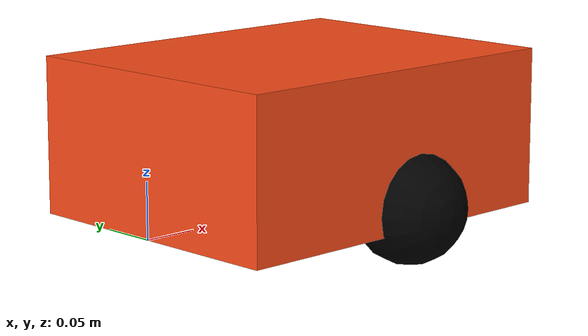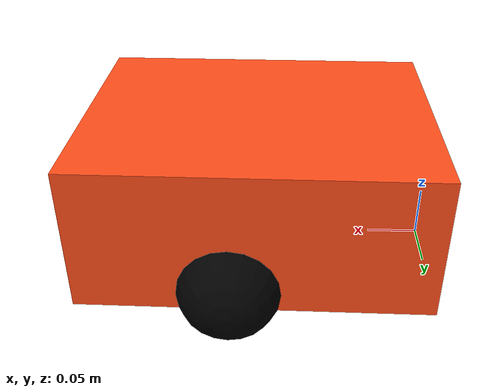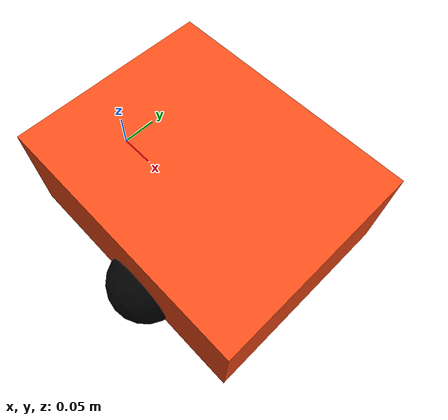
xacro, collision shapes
<?xml version="1.0"?>
<robot xmlns:xacro="http://www.ros.org/wiki/xacro" >

    <xacro:include filename="inertial_macros.xacro"/>

    <xacro:property name="chassis_length" value="0.335"/>
    <xacro:property name="chassis_width" value="0.265"/>
    <xacro:property name="chassis_height" value="0.14"/>
    <xacro:property name="chassis_mass" value="1.0"/>
    <xacro:property name="wheel_radius" value="0.05"/>
    <xacro:property name="wheel_thickness" value="0.026"/>
    <xacro:property name="wheel_mass" value="0.05"/>
    <xacro:property name="wheel_offset_x" value="0.19"/>
    <!--xacro:property name="wheel_offset_x" value="0.162"/-->
    <xacro:property name="wheel_offset_y" value="0.12"/>
    <xacro:property name="wheel_offset_z" value="0.0176"/>

    <material name="white">
        <color rgba="1 1 1 1" />
    </material>

    <material name="orange">
        <color rgba="1 0.3 0.1 1"/>
    </material>

    <material name="blue">
        <color rgba="0.2 0.2 1 1"/>
    </material>

    <material name="black">
        <color rgba="0 0 0 1"/>
    </material>

    <material name="red">
        <color rgba="1 0 0 1"/>
    </material>

    <!-- BASE LINK -->

    <link name="base_link">

    </link>

    <!-- BASE_FOOTPRINT LINK -->

    <joint name="base_footprint_joint" type="fixed">
        <parent link="base_link"/>
        <child link="base_footprint"/>
        <origin xyz="0 0 ${chassis_height/2}" rpy="0 0 0"/>
    </joint>

    <link name="base_footprint">
    </link>

    <!-- CHASSIS LINK -->

    <joint name="chassis_joint" type="fixed">
        <parent link="base_link"/>
        <child link="chassis"/>
        <origin xyz="0 0 0"/>
    </joint>

    <link name="chassis">
        <visual>
            <origin xyz="${chassis_length/2} 0 ${chassis_height/2}"/>
            <geometry>
                <mesh filename="package://turms_description/mesh/bases/chassis.stl" scale ="2 2 2"/>
                <!--box size="${chassis_length} ${chassis_width} ${chassis_height}"/-->
            </geometry>
            <material name="orange"/>
        </visual>
        <collision>
            <origin xyz="${chassis_length/2} 0 ${chassis_height/2}"/>
            <geometry>
                <box size="${chassis_length} ${chassis_width} ${chassis_height}"/>
            </geometry>
        </collision>
        <xacro:inertial_box mass="0.5" x="${chassis_length}" y="${chassis_width}" z="${chassis_height}">
            <origin xyz="${chassis_length/2} 0 ${chassis_height/2}" rpy="0 0 0"/>
        </xacro:inertial_box>
    </link>

    <gazebo reference="chassis">
        <material>Gazebo/Orange</material>
    </gazebo>

    <!-- LEFT WHEEL LINK -->

    <joint name="left_wheel_joint" type="continuous">
        <parent link="chassis"/>
        <child link="left_wheel"/>
        <origin xyz="${wheel_offset_x} ${wheel_offset_y} ${wheel_offset_z}" rpy="-${pi/2} 0 0" />
        <axis xyz="0 0 1"/>
    </joint>

    <link name="left_wheel">
        <visual>
            <origin xyz="0 0 0" rpy="${pi/2} 0 0" />
            <geometry>
                <mesh filename="package://turms_description/mesh/wheels/left_tire.stl" scale ="0.0015 0.0015 0.0015"/>
                <!--cylinder radius="${wheel_radius}" length="${wheel_thickness}"/-->
            </geometry>
            <material name="black"/>
        </visual>
        <collision>
            <geometry>
                <sphere radius="${wheel_radius}"/>
            </geometry>
        </collision>
        <xacro:inertial_cylinder mass="${wheel_mass}" length="${wheel_thickness}" radius="${wheel_radius}">
            <origin xyz="0 0 0" rpy="0 0 0"/>
        </xacro:inertial_cylinder>
    </link>

    <gazebo reference="left_wheel">
        <material>Gazebo/Black</material>
    </gazebo>

    <!-- RIGHT WHEEL LINK -->

    <joint name="right_wheel_joint" type="continuous">
        <parent link="chassis"/>
        <child link="right_wheel"/>
        <origin xyz="${wheel_offset_x} ${-wheel_offset_y} ${wheel_offset_z}" rpy="${pi/2} 0 0" />
        <axis xyz="0 0 -1"/>
    </joint>

    <link name="right_wheel">
        <visual>
            <origin xyz="0 0 0" rpy="-${pi/2} 0 0" />
            <geometry>
                <mesh filename="package://turms_description/mesh/wheels/right_tire.stl" scale ="0.0015 0.0015 0.0015"/>
                <!--cylinder radius="${wheel_radius}" length="${wheel_thickness}"/-->
            </geometry>
            <material name="black"/>
        </visual>
        <collision>
            <geometry>
                <sphere radius="${wheel_radius}"/>
            </geometry>
        </collision>
        <xacro:inertial_cylinder mass="${wheel_mass}" length="${wheel_thickness}" radius="${wheel_radius}">
            <origin xyz="0 0 0" rpy="0 0 0"/>
        </xacro:inertial_cylinder>
    </link>

    <gazebo reference="right_wheel">
        <material>Gazebo/Black</material>
    </gazebo>

</robot>
